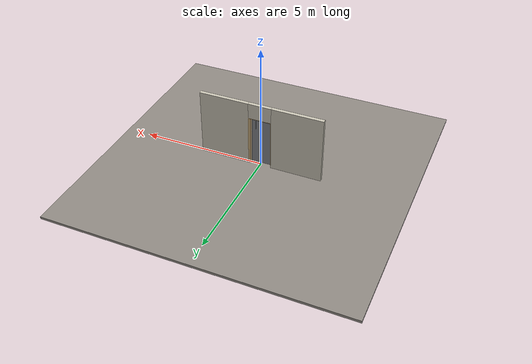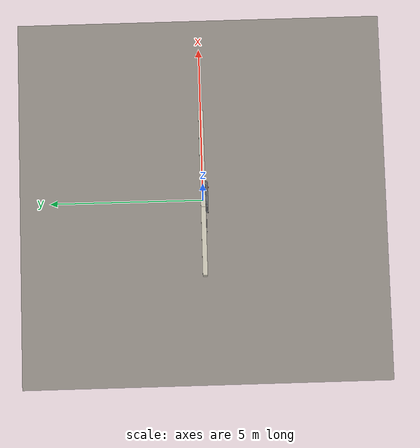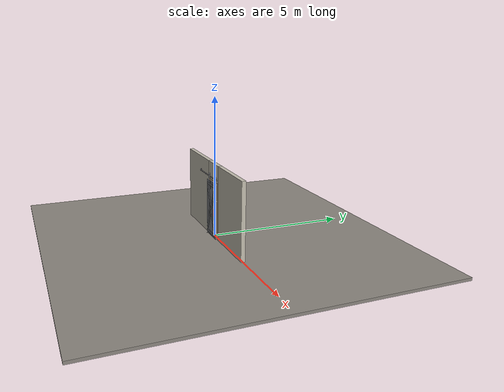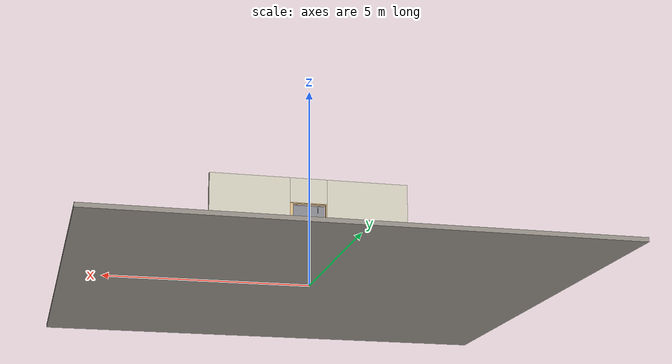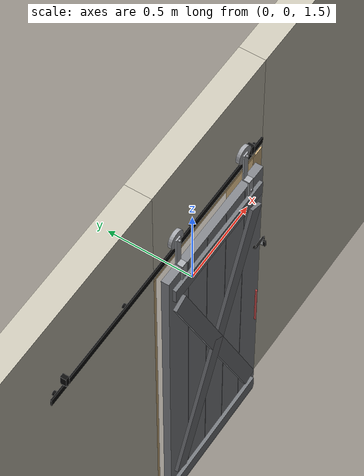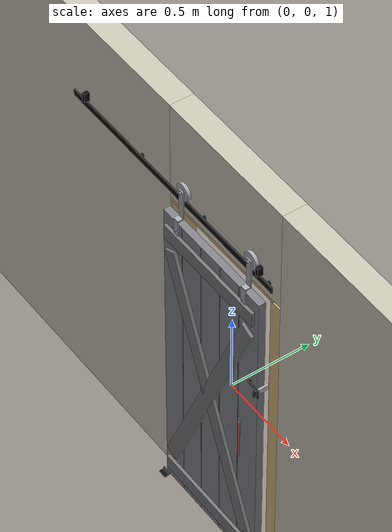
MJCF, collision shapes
<?xml version="1.0" ?>
<mujoco model="db0134_sliding_single_full">
  <compiler angle="radian" meshdir="../../hardware" texturedir="../../textures" autolimits="true" inertiafromgeom="false"/>
  <option timestep="0.002" integrator="implicitfast" cone="elliptic" impratio="10" noslip_iterations="3">
    <flag multiccd="enable"/>
  </option>
  <size memory="16M"/>
  <default>
    <geom condim="4" solref="0.005 1" solimp="0.95 0.99 0.001"/>
    <joint solreflimit="0.005 1" solimplimit="0.95 0.99 0.001"/>
    <tendon solreflimit="0.005 1"/>
    <equality solref="0.002 1"/>
  </default>
  <visual>
    <headlight ambient="0.4 0.4 0.4" diffuse="0.7 0.7 0.7" specular="0.2 0.2 0.2"/>
    <quality shadowsize="4096"/>
    <map znear="0.01" zfar="60"/>
  </visual>
  <asset>
    <mesh name="pull_2b47e55ff8" file="pull_2b47e55ff8.obj"/>
    <material name="mat_floor" rgba="0.55 0.53 0.5 1" specular="0.2" shininess="0.15" reflectance="0"/>
    <material name="mat_wall" rgba="0.78 0.76 0.7 1" specular="0.2" shininess="0.1" reflectance="0"/>
    <material name="mat_frame" rgba="0.82 0.7 0.5 1" specular="0.2" shininess="0.45" reflectance="0"/>
    <material name="mat_track" rgba="0.05 0.05 0.05 1" specular="0.38" shininess="0.3" reflectance="0.12"/>
    <material name="mat_leaf" rgba="0.5 0.51 0.53 1" specular="0.2" shininess="0.47" reflectance="0"/>
    <material name="mat_leaf_brace" rgba="0.45 0.459 0.477 1" specular="0.2" shininess="0.2" reflectance="0"/>
    <material name="mat_roller" rgba="0.65 0.66 0.68 1" specular="0.74" shininess="0.5" reflectance="0.36"/>
    <material name="mat_op_black_matte_metal" rgba="0.05 0.05 0.05 1" specular="0.38" shininess="0.3" reflectance="0.12"/>
    <material name="mat_teardrop" rgba="0.05 0.05 0.05 1" specular="0.38" shininess="0.3" reflectance="0.12"/>
    <material name="mat_hook" rgba="0.75 0.76 0.77 1" specular="0.8" shininess="0.65" reflectance="0.4"/>
    <texture name="skybox" type="skybox" builtin="gradient" rgb1="0.6 0.7 0.85" rgb2="0.9 0.92 0.95" width="256" height="256"/>
  </asset>
  <worldbody>
    <light name="sun" pos="1.5 -2.5 4" dir="-0.3 0.5 -0.8" directional="true" diffuse="0.8 0.8 0.8" specular="0.3 0.3 0.3" castshadow="true"/>
    <light name="fill" pos="-1.5 2.5 3" dir="0.3 -0.5 -0.7" directional="true" diffuse="0.35 0.35 0.4" castshadow="false"/>
    <camera name="robot_view" pos="0 -2.54875 1.73965" xyaxes="1 0 0 0 0.26963 0.962964" fovy="52"/>
    <camera name="far_view" pos="0 2.54875 1.73965" xyaxes="-1 0 0 0 -0.26963 0.962964" fovy="52"/>
    <camera name="iso" pos="1.93705 -2.14095 2.14745" xyaxes="0.741536 0.670913 0 -0.242917 0.268487 0.932151" fovy="46"/>
    <camera name="detail_handle" pos="0.4965 -0.9815 1.28" xyaxes="0.97561 0.219512 0 -0.070934 0.315262 0.94635" fovy="38"/>
    <geom name="floor" type="box" size="6 6 0.05" pos="0 0 -0.05" material="mat_floor" group="0" contype="1" conaffinity="1" friction="0.8 0.005 0.0001" density="2400"/>
    <geom name="wall_left" type="box" size="1.03225 0.0725 1.35" pos="-1.46775 0 1.35" material="mat_wall" group="0" contype="1" conaffinity="1" friction="0.6 0.005 0.0001" density="800"/>
    <geom name="wall_right" type="box" size="1.00225 0.0725 1.35" pos="1.49775 0 1.35" material="mat_wall" group="0" contype="1" conaffinity="1" friction="0.6 0.005 0.0001" density="800"/>
    <geom name="wall_header" type="box" size="0.4655 0.0725 0.3145" pos="0.03 0 2.3855" material="mat_wall" group="0" contype="1" conaffinity="1" friction="0.6 0.005 0.0001" density="800"/>
    <geom name="jamb_l" type="box" size="0.0095 0.0725 1.026" pos="-0.426 0 1.026" material="mat_frame" group="0" contype="1" conaffinity="1" friction="0.6 0.005 0.0001" density="300"/>
    <geom name="jamb_head" type="box" size="0.4355 0.0725 0.0095" pos="0 0 2.0615" material="mat_frame" group="0" contype="1" conaffinity="1" friction="0.6 0.005 0.0001" density="300"/>
    <geom name="flat_track" type="box" size="0.863 0.004 0.02" pos="-0.4065 -0.0945 2.172" material="mat_track" group="0" contype="1" conaffinity="1" friction="0.6 0.005 0.0001" density="7850"/>
    <geom name="track_standoff_0" type="cylinder" size="0.012 0.009" pos="-1.2195 -0.0815 2.172" quat="0.707107 -0.707107 0 0" material="mat_track" group="1" contype="0" conaffinity="0" density="7850"/>
    <geom name="track_standoff_1" type="cylinder" size="0.012 0.009" pos="-0.6775 -0.0815 2.172" quat="0.707107 -0.707107 0 0" material="mat_track" group="1" contype="0" conaffinity="0" density="7850"/>
    <geom name="track_standoff_2" type="cylinder" size="0.012 0.009" pos="-0.1355 -0.0815 2.172" quat="0.707107 -0.707107 0 0" material="mat_track" group="1" contype="0" conaffinity="0" density="7850"/>
    <geom name="track_standoff_3" type="cylinder" size="0.012 0.009" pos="0.4065 -0.0815 2.172" quat="0.707107 -0.707107 0 0" material="mat_track" group="1" contype="0" conaffinity="0" density="7850"/>
    <geom name="leaf_track_stop_l" type="box" size="0.012 0.016 0.027" pos="-1.1615 -0.0945 2.217" material="mat_track" group="0" contype="1" conaffinity="1" friction="0.6 0.005 0.0001" density="7850"/>
    <geom name="leaf_track_stop_r" type="box" size="0.012 0.016 0.027" pos="0.3485 -0.0945 2.217" material="mat_track" group="0" contype="1" conaffinity="1" friction="0.6 0.005 0.0001" density="7850"/>
    <geom name="leaf_teardrop_keeper_post" type="box" size="0.005 0.006 0.018" pos="0.4115 -0.1465 1.416" material="mat_teardrop" group="0" contype="1" conaffinity="1" friction="0.6 0.005 0.0001" density="7800"/>
    <geom name="leaf_teardrop_keeper_base" type="box" size="0.005 0.008 0.02" pos="0.4115 -0.1605 1.42" material="mat_teardrop" group="1" contype="0" conaffinity="0" density="7800"/>
    <geom name="jamb_latch_0" type="box" size="0.0395 0.0725 1.026" pos="0.456 0 1.026" material="mat_frame" group="0" contype="1" conaffinity="1" friction="0.6 0.005 0.0001" density="300"/>
    <geom name="floor_guide_n" type="box" size="0.028 0.004 0.009" pos="-0.4065 -0.1415 0.009" material="mat_track" group="0" contype="1" conaffinity="1" friction="0.6 0.005 0.0001" density="7850"/>
    <geom name="floor_guide_n_foot" type="box" size="0.028 0.018 0.002" pos="-0.4065 -0.1555 0.002" material="mat_track" group="0" contype="1" conaffinity="1" friction="0.6 0.005 0.0001" density="7850"/>
    <geom name="floor_guide_p" type="box" size="0.028 0.004 0.009" pos="-0.4065 -0.0875 0.009" material="mat_track" group="0" contype="1" conaffinity="1" friction="0.6 0.005 0.0001" density="7850"/>
    <geom name="floor_guide_p_foot" type="box" size="0.028 0.018 0.002" pos="-0.4065 -0.0735 0.002" material="mat_track" group="0" contype="1" conaffinity="1" friction="0.6 0.005 0.0001" density="7850"/>
    <geom name="leaf_teardrop_keeper_base_arm" type="box" size="0.005 0.0405 0.016" pos="0.4115 -0.1125 1.42" material="mat_hook" group="1" contype="0" conaffinity="0" density="7850"/>
    <site name="approach_point" pos="0 -1.5 0" quat="1 0 0 0" size="0.05" rgba="0.2 0.9 0.2 0.5" group="4"/>
    <site name="goal_point" pos="0 1.5 0" quat="1 0 0 0" size="0.05" rgba="0.2 0.9 0.2 0.5" group="4"/>
    <site name="door_plane_center" pos="0 0 1.026" quat="1 0 0 0" size="0.02" rgba="0.2 0.9 0.2 0.5" group="4"/>
    <body name="leaf" pos="0 -0.1145 0">
      <inertial pos="0.002638 0.000096 1.110309" mass="55.414091" quat="0.500964 0.498615 -0.500395 0.500023" diaginertia="3.192907113 22.482884873 25.653061765"/>
      <joint name="leaf_slide" type="slide" axis="-1 0 0" limited="true" range="0 0.813" damping="4.776826" frictionloss="65.355275" armature="0.5"/>
      <geom name="leaf_slab" type="box" size="0.4065 0.022 1.016" pos="0 0 1.028" material="mat_leaf" group="0" contype="1" conaffinity="1" friction="0.4 0.005 0.0001" density="1"/>
      <geom name="leaf_plank_gap_1" type="box" size="0.002 0.023 1.006" pos="-0.2439 0 1.028" material="mat_leaf_brace" group="1" contype="0" conaffinity="0" density="1"/>
      <geom name="leaf_plank_gap_2" type="box" size="0.002 0.023 1.006" pos="-0.0813 0 1.028" material="mat_leaf_brace" group="1" contype="0" conaffinity="0" density="1"/>
      <geom name="leaf_plank_gap_3" type="box" size="0.002 0.023 1.006" pos="0.0813 0 1.028" material="mat_leaf_brace" group="1" contype="0" conaffinity="0" density="1"/>
      <geom name="leaf_plank_gap_4" type="box" size="0.002 0.023 1.006" pos="0.2439 0 1.028" material="mat_leaf_brace" group="1" contype="0" conaffinity="0" density="1"/>
      <geom name="leaf_batten_13" type="box" size="0.3765 0.01 0.045" pos="0 -0.032 0.132" material="mat_leaf_brace" group="1" contype="0" conaffinity="0" density="1"/>
      <geom name="leaf_batten_192" type="box" size="0.3765 0.01 0.045" pos="0 -0.032 1.924" material="mat_leaf_brace" group="1" contype="0" conaffinity="0" density="1"/>
      <geom name="leaf_brace_z" type="box" size="0.85344 0.01 0.045" pos="0 -0.032 1.028" quat="0.833751 0 -0.55214 0" material="mat_leaf_brace" group="1" contype="0" conaffinity="0" density="1"/>
      <geom name="leaf_brace_x" type="box" size="0.85344 0.01 0.045" pos="0 -0.032 1.028" quat="0.833751 0 0.55214 0" material="mat_leaf_brace" group="1" contype="0" conaffinity="0" density="1"/>
      <geom name="leaf_hanger_wheel_0" type="cylinder" size="0.05 0.01" pos="-0.2865 0.02 2.242" quat="0.707107 -0.707107 0 0" material="mat_roller" group="1" contype="0" conaffinity="0" density="7850"/>
      <geom name="leaf_hanger_mount_0" type="box" size="0.018 0.004 0.0725" pos="-0.2865 -0.026 1.9965" material="mat_roller" group="1" contype="0" conaffinity="0" density="7850"/>
      <geom name="leaf_hanger_strap_0" type="box" size="0.018 0.004 0.0925" pos="-0.2865 0.006 2.1615" material="mat_roller" group="1" contype="0" conaffinity="0" density="7850"/>
      <geom name="leaf_hanger_bend_0" type="box" size="0.018 0.02 0.004" pos="-0.2865 -0.01 2.069" material="mat_roller" group="1" contype="0" conaffinity="0" density="7850"/>
      <geom name="leaf_hanger_axle_0" type="cylinder" size="0.006 0.021" pos="-0.2865 0.013 2.242" quat="0.707107 -0.707107 0 0" material="mat_roller" group="1" contype="0" conaffinity="0" density="7850"/>
      <geom name="leaf_hanger_bolt_0_90" type="cylinder" size="0.007 0.004" pos="-0.2865 -0.032 1.954" quat="0.707107 -0.707107 0 0" material="mat_roller" group="1" contype="0" conaffinity="0" density="7850"/>
      <geom name="leaf_hanger_bolt_0_45" type="cylinder" size="0.007 0.004" pos="-0.2865 -0.032 1.999" quat="0.707107 -0.707107 0 0" material="mat_roller" group="1" contype="0" conaffinity="0" density="7850"/>
      <geom name="leaf_hanger_wheel_1" type="cylinder" size="0.05 0.01" pos="0.2865 0.02 2.242" quat="0.707107 -0.707107 0 0" material="mat_roller" group="1" contype="0" conaffinity="0" density="7850"/>
      <geom name="leaf_hanger_mount_1" type="box" size="0.018 0.004 0.0725" pos="0.2865 -0.026 1.9965" material="mat_roller" group="1" contype="0" conaffinity="0" density="7850"/>
      <geom name="leaf_hanger_strap_1" type="box" size="0.018 0.004 0.0925" pos="0.2865 0.006 2.1615" material="mat_roller" group="1" contype="0" conaffinity="0" density="7850"/>
      <geom name="leaf_hanger_bend_1" type="box" size="0.018 0.02 0.004" pos="0.2865 -0.01 2.069" material="mat_roller" group="1" contype="0" conaffinity="0" density="7850"/>
      <geom name="leaf_hanger_axle_1" type="cylinder" size="0.006 0.021" pos="0.2865 0.013 2.242" quat="0.707107 -0.707107 0 0" material="mat_roller" group="1" contype="0" conaffinity="0" density="7850"/>
      <geom name="leaf_hanger_bolt_1_90" type="cylinder" size="0.007 0.004" pos="0.2865 -0.032 1.954" quat="0.707107 -0.707107 0 0" material="mat_roller" group="1" contype="0" conaffinity="0" density="7850"/>
      <geom name="leaf_hanger_bolt_1_45" type="cylinder" size="0.007 0.004" pos="0.2865 -0.032 1.999" quat="0.707107 -0.707107 0 0" material="mat_roller" group="1" contype="0" conaffinity="0" density="7850"/>
      <geom name="leaf_pull_n" type="mesh" mesh="pull_2b47e55ff8" pos="0.3165 -0.022 1" quat="0.707107 0.707107 0 0" material="mat_op_black_matte_metal" group="1" contype="0" conaffinity="0" density="3000"/>
      <geom name="leaf_pull_col_n" type="capsule" size="0.006 0.13" pos="0.3165 -0.067 1" material="mat_op_black_matte_metal" group="3" contype="1" conaffinity="1" rgba="0.8 0.3 0.3 0.25" friction="0.7 0.01 0.0001" density="3000"/>
      <site name="leaf_pull_grip_n" pos="0.3165 -0.067 1" quat="1 0 0 0" size="0.012" rgba="0.2 0.9 0.2 0.5" group="4"/>
      <site name="leaf_edge_mid" pos="0.4065 0 1.028" quat="1 0 0 0" size="0.02" rgba="0.2 0.9 0.2 0.5" group="4"/>
      <body name="leaf_teardrop" pos="0.3465 -0.032 1.45">
        <inertial pos="0.043422 0.00123 -0.01162" mass="0.122437" quat="0.688754 0.704878 0.099431 -0.137401" diaginertia="0.000019179 0.000140472 0.000156801"/>
        <joint name="leaf_teardrop_hinge" type="hinge" axis="0 -1 0" limited="true" range="0 1.4" damping="0.005199" frictionloss="0.004386" armature="0.0001"/>
        <geom name="leaf_teardrop_top" type="box" size="0.04 0.004 0.006" pos="0.04 0 -0.005" material="mat_teardrop" group="0" contype="1" conaffinity="1" friction="0.6 0.005 0.0001" density="7800"/>
        <geom name="leaf_teardrop_end" type="box" size="0.005 0.004 0.03" pos="0.078 0 -0.03" material="mat_teardrop" group="0" contype="1" conaffinity="1" friction="0.6 0.005 0.0001" density="7800"/>
        <geom name="leaf_teardrop_boss" type="cylinder" size="0.008 0.008" pos="0 0.006 0" quat="0.707107 -0.707107 0 0" material="mat_teardrop" group="1" contype="0" conaffinity="0" density="7800"/>
        <site name="leaf_teardrop_grip" pos="0.078 -0.01 -0.05" quat="1 0 0 0" size="0.01" rgba="0.2 0.9 0.2 0.5" group="4"/>
      </body>
    </body>
  </worldbody>
  <sensor>
    <jointpos name="leaf_slide_pos" joint="leaf_slide"/>
    <jointvel name="leaf_slide_vel" joint="leaf_slide"/>
    <jointpos name="leaf_teardrop_hinge_pos" joint="leaf_teardrop_hinge"/>
    <jointvel name="leaf_teardrop_hinge_vel" joint="leaf_teardrop_hinge"/>
  </sensor>
</mujoco>
